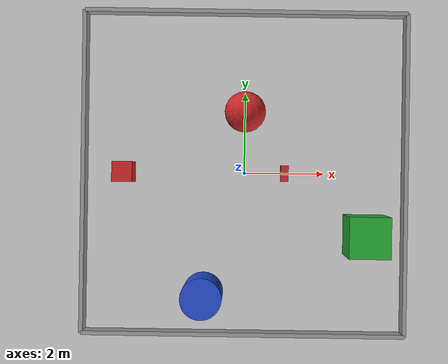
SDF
<sdf version="1.4">
 <world name="default">
  <include><uri>model://sun</uri></include>
  <include><uri>model://ground_plane</uri></include>
  <scene><shadows>0</shadows></scene>
  <physics type="ode">
   <max_step_size>0.01</max_step_size>
   <real_time_factor>1</real_time_factor>
   <real_time_update_rate>100</real_time_update_rate>
   <gravity>0 0 -9.8</gravity>
  </physics>
  <model name="sphere">
   <pose>0 1.5 0.5 0 0 0</pose>
   <link name="link">
    <collision name="collision"><geometry><sphere><radius>0.5</radius></sphere></geometry></collision>
    <visual name="visual">
     <geometry><sphere><radius>0.5</radius></sphere></geometry>
     <material><script><name>Gazebo/RedBright</name></script></material>
    </visual>
   </link>
  </model>
  <model name="cube1">
   <pose>3.0 -1.5 0.5 0 0 0</pose>
   <link name="link">
    <collision name="collision"><geometry><box><size>1 1 1</size></box></geometry></collision>
    <visual name="visual">
     <geometry><box><size>1 1 1</size></box></geometry>
     <material><script><name>Gazebo/Green</name></script></material>
    </visual>
   </link>
  </model>
  <model name="cylinder">
   <pose>-1.0 -3.0 0.5 0 0 0</pose>
   <link name="link">
    <collision name="collision">
     <geometry><cylinder><radius>0.5</radius><length>1.0</length></cylinder></geometry>
    </collision>
    <visual name="visual">
     <geometry><cylinder><radius>0.5</radius><length>1.0</length></cylinder></geometry>
     <material><script><name>Gazebo/Blue</name></script></material>
    </visual>
   </link>
  </model>
  <model name="cube2">
   <pose>-3.0 0.0 0.25 0 0 0</pose>
   <link name="link">
    <collision name="collision"><geometry><box><size>0.5 0.5 0.5</size></box></geometry></collision>
    <visual name="visual">
     <geometry><box><size>0.5 0.5 0.5</size></box></geometry>
     <material><script><name>Gazebo/Red</name></script></material>
    </visual>
   </link>
  </model>
  <model name="grey_wall_0">
   <static>1</static>
   <link name="grey_wall_0_link">
    <pose>0 0 0.165 0 0 0</pose>
    <collision name="collision"><geometry><box><size>8 0.1 0.33</size></box></geometry></collision>
    <visual name="grey_wall_0_visual">
     <cast_shadows>0</cast_shadows>
     <geometry><box><size>8 0.1 0.33</size></box></geometry>
     <material>
      <script>
       <uri>model://grey_wall/materials/scripts</uri>
       <uri>model://grey_wall/materials/textures</uri>
       <name>vrc/grey_wall</name>
      </script>
     </material>
    </visual>
    <velocity_decay><linear>0</linear><angular>0</angular></velocity_decay>
   </link>
   <pose>0 4 0 0 -0 0</pose>
  </model>
  <model name="grey_wall_1">
   <static>1</static>
   <link name="grey_wall_1_link">
    <pose>0 0 0.165 0 0 0</pose>
    <collision name="collision"><geometry><box><size>8 0.1 0.33</size></box></geometry></collision>
    <visual name="grey_wall_1_visual">
     <cast_shadows>0</cast_shadows>
     <geometry><box><size>8 0.1 0.33</size></box></geometry>
     <material>
      <script>
       <uri>model://grey_wall/materials/scripts</uri>
       <uri>model://grey_wall/materials/textures</uri>
       <name>vrc/grey_wall</name>
      </script>
     </material>
    </visual>
    <velocity_decay><linear>0</linear><angular>0</angular></velocity_decay>
   </link>
   <pose>0 -4 0 0 -0 0</pose>
  </model>
  <model name="grey_wall_2">
   <static>1</static>
   <link name="grey_wall_2_link">
    <pose>0 0 0.165 0 0 0</pose>
    <collision name="collision"><geometry><box><size>8 0.1 0.33</size></box></geometry></collision>
    <visual name="grey_wall_2_visual">
     <cast_shadows>0</cast_shadows>
     <geometry><box><size>8 0.1 0.33</size></box></geometry>
     <material>
      <script>
       <uri>model://grey_wall/materials/scripts</uri>
       <uri>model://grey_wall/materials/textures</uri>
       <name>vrc/grey_wall</name>
      </script>
     </material>
    </visual>
    <velocity_decay><linear>0</linear><angular>0</angular></velocity_decay>
   </link>
   <pose>4 0 0 0 -0 1.57102</pose>
  </model>
  <model name="grey_wall_3">
   <static>1</static>
   <link name="grey_wall_3_link">
    <pose>0 0 0.165 0 0 0</pose>
    <collision name="collision"><geometry><box><size>8 0.1 0.33</size></box></geometry></collision>
    <visual name="grey_wall_3_visual">
     <cast_shadows>0</cast_shadows>
     <geometry><box><size>8 0.1 0.33</size></box></geometry>
     <material>
      <script>
       <uri>model://grey_wall/materials/scripts</uri>
       <uri>model://grey_wall/materials/textures</uri>
       <name>vrc/grey_wall</name>
      </script>
     </material>
    </visual>
    <velocity_decay><linear>0</linear><angular>0</angular></velocity_decay>
   </link>
   <pose>-4 0 0 0 0 1.57102</pose>
  </model>
  <model name="table">
   <static>1</static>
   <pose>1.0 0.0 0.06 0 0 0</pose>
   <link name="link">
    <inertial>
     <mass>10</mass>
     <inertia><ixx>0.1</ixx><ixy>0.0</ixy><ixz>0.0</ixz><iyy>0.015</iyy><iyz>0.0</iyz><izz>0.1</izz></inertia>
    </inertial>
    <collision name="collision">
     <geometry><box><size>0.2 0.4 0.12</size></box></geometry>
     <surface><friction><ode><mu>0.4</mu><mu2>0.4</mu2></ode></friction></surface>
    </collision>
    <visual name="visual">
     <geometry><box><size>0.2 0.4 0.12</size></box></geometry>
     <material><script><name>Gazebo/Red</name></script></material>
    </visual>
   </link>
  </model>
  <model name="target_cylinder">
   <pose>1.0 0 0.18 0 0 0</pose>
   <link name="link">
    <inertial>
     <mass>0.01</mass>
     <inertia><ixx>0.001</ixx><ixy>0.0</ixy><ixz>0.0</ixz><iyy>0.001</iyy><iyz>0.0</iyz><izz>0.001</izz></inertia>
    </inertial>
    <collision name="collision">
     <geometry><cylinder><radius>0.025</radius><length>0.12</length></cylinder></geometry>
     <surface><friction><ode><mu>0.9</mu><mu2>0.9</mu2></ode></friction></surface>
    </collision>
    <visual name="visual">
     <geometry><cylinder><radius>0.025</radius><length>0.12</length></cylinder></geometry>
     <material><script><name>Gazebo/Blue</name></script></material>
    </visual>
   </link>
  </model>
 </world>
</sdf>
